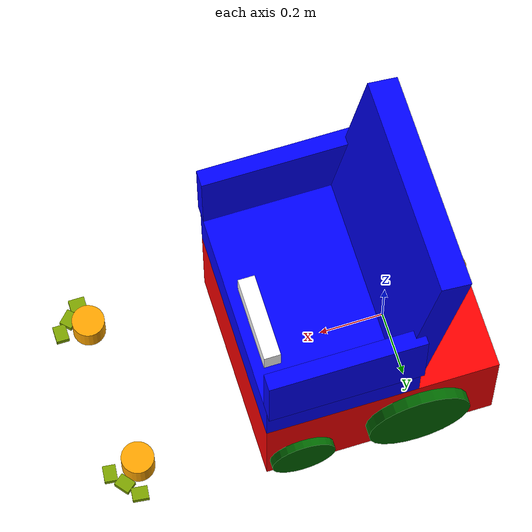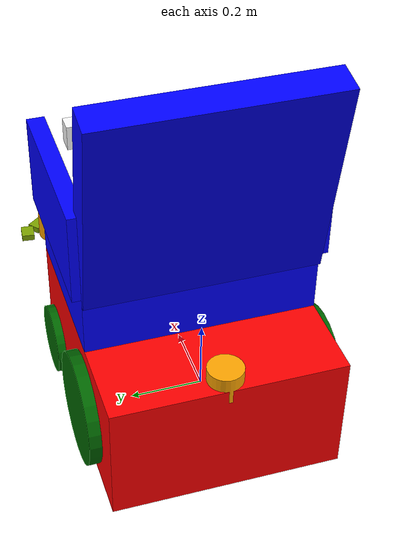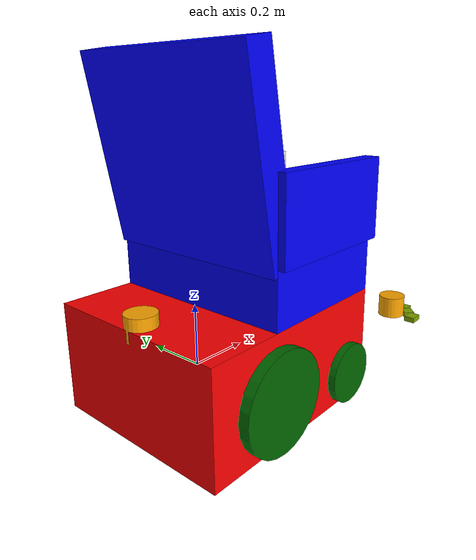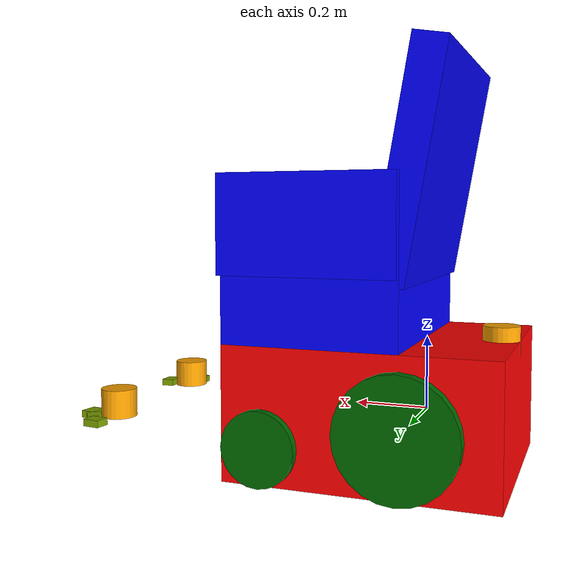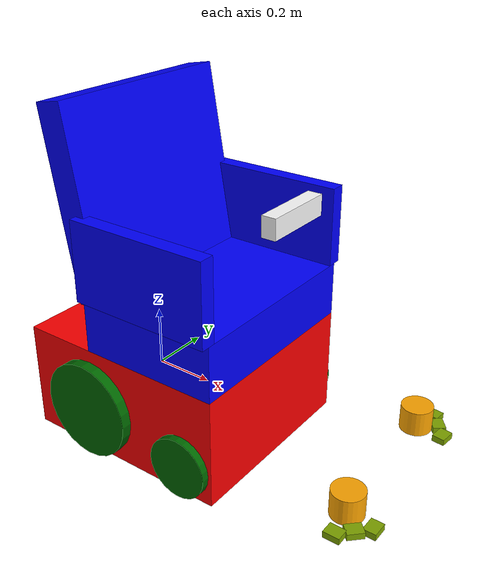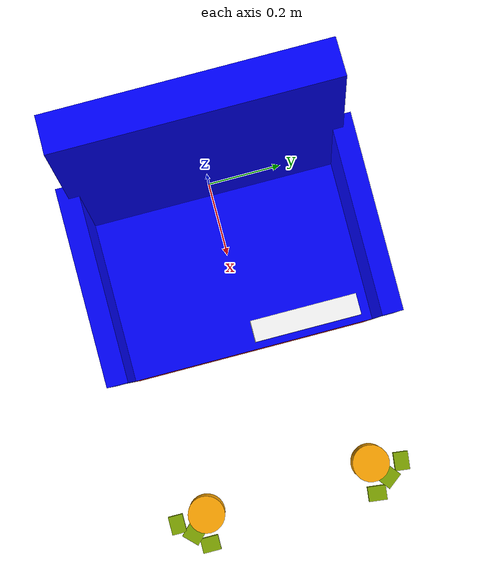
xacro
<robot xmlns:xacro="http://www.ros.org/wiki/xacro" name="FRMI">

  <!-- Macro -->
  <xacro:property name="PI" value="3.14159265" />

  <xacro:property name="base_length" value=".72" />
  <xacro:property name="base_width" value=".65" />
  <xacro:property name="base_height" value=".36" />

  <xacro:property name="x_wheel" value="0.11" />
  <xacro:property name="wheel_radius" value=".16" />
  <xacro:property name="small_wheel_radius" value=".10" />

  <xacro:property name="chair_seat_height" value=".18" />

  <xacro:property name="laser_height" value=".08" />

  <xacro:property name="right_sonnar_plate_length" value=".07" />
  <xacro:property name="right_sonnar_plate_width" value=".105" />
  <xacro:property name="left_sonnar_plate_length" value=".07" />
  <xacro:property name="left_sonnar_plate_width" value=".11" />

	<xacro:property name="right_laser_x" value="0.862" />
/>
	<xacro:property name="right_laser_y" value="-0.232019" />

	<xacro:property name="right_laser_orient" value="-0.785398" />
	<xacro:property name="left_laser_x" value="0.842117" />
	<xacro:property name="left_laser_y" value="0.229516" />
	<xacro:property name="left_laser_orient" value="0.669357" />

 <xacro:property name="rear_laser_x" value="-0.200683" />
  <xacro:property name="rear_laser_y" value="0.0023804" />
  <xacro:property name="rear_laser_orient" value="3.09079" />

  <xacro:property name="kinect_x" value="0.43" />
  <xacro:property name="kinect_y" value="0.13" />
  <xacro:property name="kinect_orient" value="0" />

  <!-- wheel -->
  <xacro:macro name="wheel" params="name radius width">
    <link name="${name}_wheel">
      <visual>
        <geometry>
          <cylinder radius="${radius}" length="${width}"/>
        </geometry>
        <material name="Dark Green">
          <color rgba="0 0.4 0 1.0"/>
        </material>
      </visual>
    </link>
  </xacro:macro>

  <!-- laser -->
  <xacro:macro name="laser" params="name">
    <link name="${name}_laser">
      <visual>
        <geometry>
          <cylinder radius="0.05" length="${laser_height}"/>
        </geometry>
        <material name="Orange">
          <color rgba="1 0.65 0 1.0"/>
        </material>
      </visual>
    </link>
  </xacro:macro>

  <!-- sonnar -->
  <xacro:macro name="sonnar" params="name">
    <link name="${name}_sonnar">
      <visual>
        <geometry>
          <box size="0.04 0.05 0.02" />
        </geometry>
        <material name="Orange">
          <color rgba="0.5 0.65 0 1.0"/>
        </material>
      </visual>
    </link>
  </xacro:macro>

  <!-- a fixed joint -->
  <xacro:macro name="macro_fixed_joint" params="name parent_name x y z roll pitch yaw">
    <joint name="joint_${name}" type="fixed">
      <parent link="${parent_name}"/>
      <child link="${name}"/>
      <origin xyz="${x} ${y} ${z}" rpy="${roll} ${pitch} ${yaw}" />
    </joint>
  </xacro:macro>

  <!-- a continuous joint : a joint that can turn -->
  <xacro:macro name="macro_continuous_joint" params="name parent_name x y z roll pitch yaw">
    <joint name="joint_${name}" type="continuous">
      <parent link="${parent_name}"/>
      <child link="${name}"/>
      <origin xyz="${x} ${y} ${z}" rpy="${roll} ${pitch} ${yaw}" />
    </joint>
  </xacro:macro>

  <!-- Link -->
  <link name="base_link" >
    <visual>
      <origin xyz="${x_wheel} 0 ${base_height/2-wheel_radius}" rpy="0 0 0" />
      <geometry>
        <box size="${base_length} ${base_width} ${base_height}" />
      </geometry>
      <material name="red motor">
        <color rgba="1 0 0 1"/>
      </material>
    </visual>
  </link>

  <link name="footprint_base_link"/>

  <link name="chair_seat" >
    <visual>
      <geometry>
        <box size="${base_length/2+x_wheel} ${base_width} ${chair_seat_height}" />
      </geometry>
      <material name="Lawn Green">
        <color rgba="0 0 1 1"/>
      </material>
    </visual>
  </link>

  <link name="chair_back" >
    <visual>
      <geometry>
        <box size="0.09 0.65 0.60" />
      </geometry>
      <material name="Lawn Green"/>
    </visual>
  </link>

  <link name="right_armrest" >
    <visual>
      <geometry>
        <box size="${base_length/2+x_wheel} 0.05 0.26" />
      </geometry>
      <material name="Lawn Green"/>
    </visual>
  </link>

  <link name="left_armrest" >
    <visual>
      <geometry>
        <box size="${base_length/2+x_wheel} 0.05 0.26" />
      </geometry>
      <material name="Lawn Green"/>
    </visual>
  </link>

  <xacro:wheel name="right" radius="${wheel_radius}" width="0.07"/>
  <xacro:wheel name="left" radius="${wheel_radius}" width="0.07"/>

  <xacro:wheel name="right_small" radius="${small_wheel_radius}" width="0.05"/>
  <xacro:wheel name="left_small" radius="${small_wheel_radius}" width="0.05"/>

  <xacro:laser name="right"/>
  <xacro:laser name="left"/>
  <xacro:laser name="rear"/>

  <xacro:sonnar name="right_center"/>
  <xacro:sonnar name="right_left"/>
  <xacro:sonnar name="right_right"/>

  <xacro:sonnar name="left_center"/>
  <xacro:sonnar name="left_left"/>
  <xacro:sonnar name="left_right"/>

  <!-- kinect -->
  <link name="openni_camera" >
    <visual>
      <origin xyz="0 0 0" rpy="0 0 0" />
      <geometry>
        <box size="0.05 0.25 0.07" />
      </geometry>
      <material name="White">
        <color rgba="1 1 1 1"/>
      </material>
    </visual>
  </link>
  <link name="openni_depth_frame"/>
  <link name="openni_rgb_frame"/>
  <link name="openni_depth_optical_frame"/>
  <link name="openni_rgb_optical_frame"/>

  <!-- Joint -->

  <xacro:macro_fixed_joint name="footprint_base_link" parent_name="base_link" x ="0" y="0" z="-0.18" roll="0" pitch="0" yaw="0"/>

  <xacro:macro_fixed_joint name="right_laser" parent_name="base_link" x ="${right_laser_x}" y="${right_laser_y}" z="0" roll="0" pitch="0" yaw="${right_laser_orient}"/>
  <xacro:macro_fixed_joint name="left_laser" parent_name="base_link" x ="${left_laser_x}" y="${left_laser_y}" z="0" roll="0" pitch="0" yaw="${left_laser_orient}"/>
  <xacro:macro_fixed_joint name="rear_laser" parent_name="base_link" x ="${rear_laser_x}" y="${rear_laser_y}" z="0.2" roll="0" pitch="0" yaw="${rear_laser_orient}"/>

  <xacro:macro_continuous_joint name="right_wheel" parent_name="base_link" x ="0" y="${-base_width/2}" z="0" roll="${-PI/2}" pitch="0" yaw="0"/>
  <xacro:macro_continuous_joint name="left_wheel" parent_name="base_link" x ="0" y="${base_width/2}" z="0" roll="${PI/2}" pitch="0" yaw="0"/>

  <xacro:macro_continuous_joint name="right_small_wheel" parent_name="base_link" x ="${base_length/2}" y="${-base_width/2}" z="${small_wheel_radius-wheel_radius}" roll="${-PI/2}" pitch="${-PI/2}" yaw="0"/>
  <xacro:macro_continuous_joint name="left_small_wheel" parent_name="base_link" x ="${base_length/2}" y="${base_width/2}" z="${small_wheel_radius-wheel_radius}" roll="${PI/2}" pitch="${-PI/2}" yaw="0"/>

  <xacro:macro_fixed_joint name="chair_seat" parent_name="base_link" x ="${base_length/4+x_wheel/2}" y="0" z="${chair_seat_height/2 + base_height - wheel_radius}" roll="0" pitch="0" yaw="0"/>

  <xacro:macro_fixed_joint name="chair_back" parent_name="chair_seat" x ="-0.255" y="0" z="0.37" roll="0" pitch="${-PI/18}" yaw="0"/>
  <xacro:macro_fixed_joint name="right_armrest" parent_name="chair_seat" x ="0" y="${-base_width/2}" z="0.22" roll="0" pitch="0" yaw="0"/>
  <xacro:macro_fixed_joint name="left_armrest" parent_name="chair_seat" x ="0" y="${base_width/2}" z="0.22" roll="0" pitch="0" yaw="0"/>

  <xacro:macro_fixed_joint name="openni_camera" parent_name="base_link" x ="${kinect_x}" y="${kinect_y}" z="0.60" roll="0" pitch="0" yaw="${kinect_orient}"/>
  <!--xacro:macro_fixed_joint name="openni_camera" parent_name="base_link" x ="0.43" y="-0.13" z="0.60" roll="0" pitch="0" yaw="0"/-->
  <xacro:macro_fixed_joint name="openni_depth_frame" parent_name="openni_camera" x ="0" y="-0.02" z="0" roll="0" pitch="0" yaw="0"/>
  <xacro:macro_fixed_joint name="openni_rgb_frame" parent_name="openni_camera" x ="0" y="-0.04" z="0" roll="0" pitch="0" yaw="0"/>
  <xacro:macro_fixed_joint name="openni_depth_optical_frame" parent_name="openni_depth_frame" x ="0" y="0" z="0" roll="-1.57" pitch="0" yaw="-1.57"/>
  <xacro:macro_fixed_joint name="openni_rgb_optical_frame" parent_name="openni_rgb_frame" x ="0" y="0" z="0" roll="-1.57" pitch="0" yaw="-1.57"/>

  <xacro:macro_fixed_joint name="right_center_sonnar" parent_name="right_laser" x ="${right_sonnar_plate_length}" y="0" z="${-laser_height/2}" roll="0" pitch="0" yaw="0"/>
  <xacro:macro_fixed_joint name="right_right_sonnar" parent_name="right_laser" x ="${right_sonnar_plate_length}" y="${-right_sonnar_plate_width/2}" z="${-laser_height/2}" roll="0" pitch="0" yaw="${-PI/4}"/>
  <xacro:macro_fixed_joint name="right_left_sonnar" parent_name="right_laser" x ="${right_sonnar_plate_length}" y="${right_sonnar_plate_width/2}" z="${-laser_height/2}" roll="0" pitch="0" yaw="${PI/4}"/>

  <xacro:macro_fixed_joint name="left_center_sonnar" parent_name="left_laser" x ="${left_sonnar_plate_length}" y="0" z="${-laser_height/2}" roll="0" pitch="0" yaw="0"/>
  <xacro:macro_fixed_joint name="left_right_sonnar" parent_name="left_laser" x ="${left_sonnar_plate_length}" y="${-left_sonnar_plate_width/2}" z="${-laser_height/2}" roll="0" pitch="0" yaw="${-PI/4}"/>
  <xacro:macro_fixed_joint name="left_left_sonnar" parent_name="left_laser" x ="${left_sonnar_plate_length}" y="${left_sonnar_plate_width/2}" z="${-laser_height/2}" roll="0" pitch="0" yaw="${PI/4}"/>

</robot>
